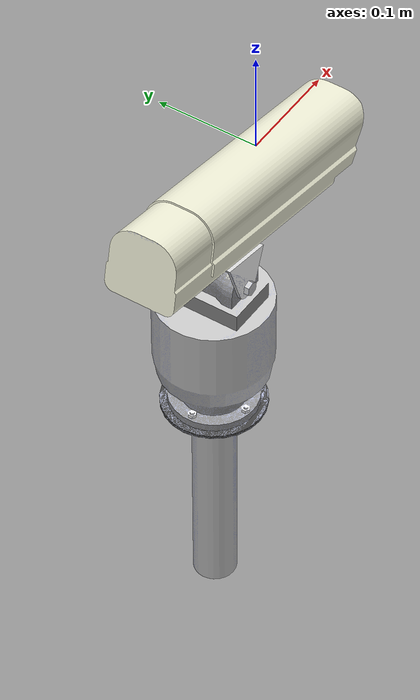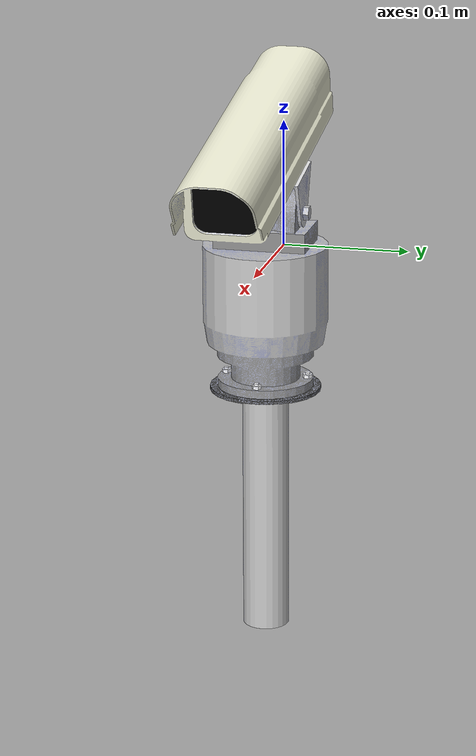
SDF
<?xml version="1.0" ?>
<sdf version="1.6">
  <model name="camera">
    <link name="cam">
      <gravity>false</gravity>
      <pose>0.05 0.05 0.05 0  0 0</pose>
      <inertial>
        <mass>0.01</mass>
      </inertial>
      <visual name="visual">
   <pose>-0.3 -0.4 -0.7 0  0 1.57</pose>
         <geometry>
   <mesh>
   <uri>model://camera/meshes/camera.dae</uri>
   </mesh>
      </geometry>
      </visual>
      <sensor name="camera" type="wideanglecamera">
      <always_on>1</always_on>
      <update_rate>60</update_rate>
      <visualize>0</visualize>
      <camera>
        <horizontal_fov>2.957216683909311</horizontal_fov>
        <image>
          <width>320</width>
          <height>240</height>
          <format>L8</format>
        </image>
        <clip>
          <near>0.2</near>
          <far>100</far>
        </clip>
        <distortion>
          <k1>0.993308</k1>
        </distortion>
      </camera>
      <plugin name="nav_cam" filename="libcamera_nav.so">
      </plugin>
    </sensor>
    </link>
  </model>
</sdf>
